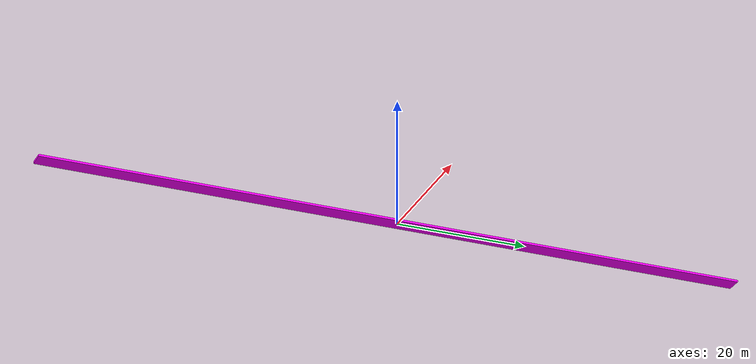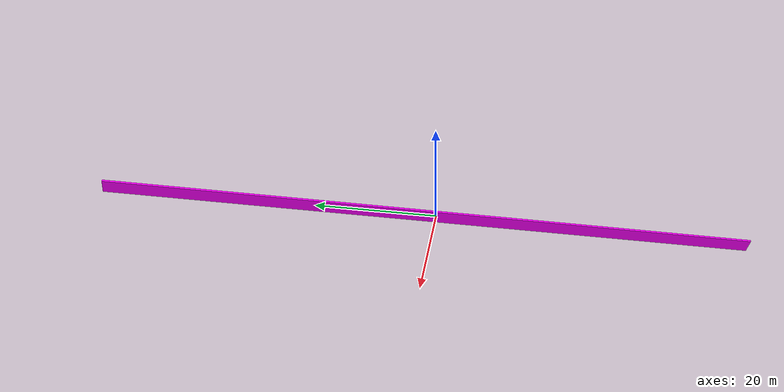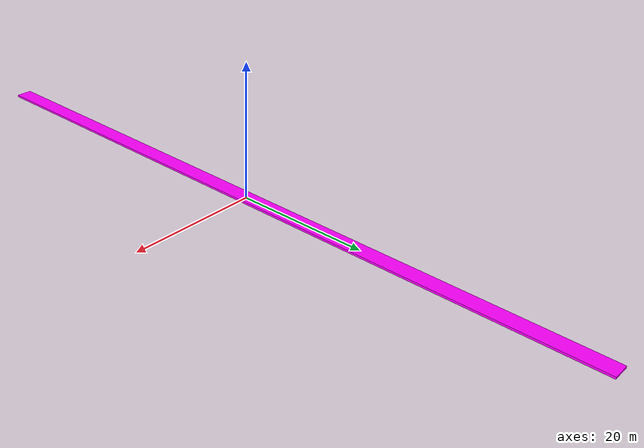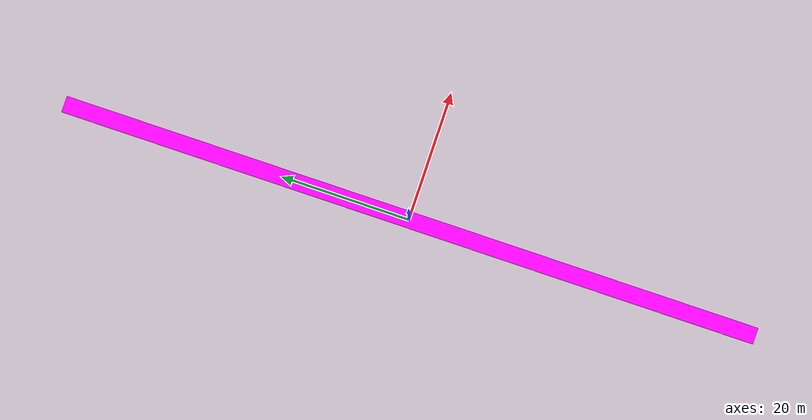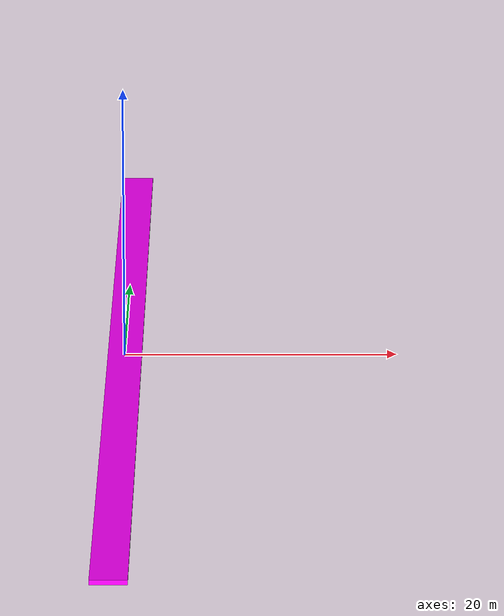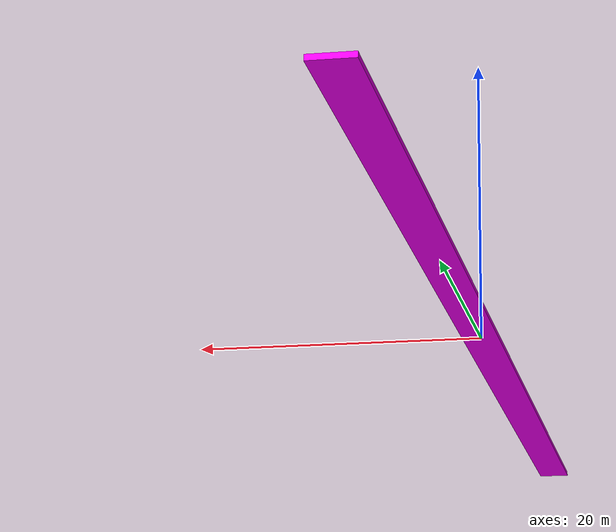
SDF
<?xml version="1.0" ?>
<sdf version="1.4">

  <model name="step">
    <static>true</static>

    <link name="link">

      <collision name="collision">

        <geometry>
          <box>
            <size>2.5 108.5 0.32</size>
          </box>
        </geometry>

      </collision>

      <visual name="visual">

        <geometry>
          <box>
            <size>2.5 108.5 0.32</size>
          </box>
        </geometry>

        <material>
          <ambient>0.3607 0.2 0.0901 1</ambient>
          <diffuse>1 0 1 1</diffuse>
          <specular>0.1 0.1 0.1 1</specular>
          <emissive>0 0 0 0</emissive>
        </material>

      </visual>

    </link>

  </model>

</sdf>
